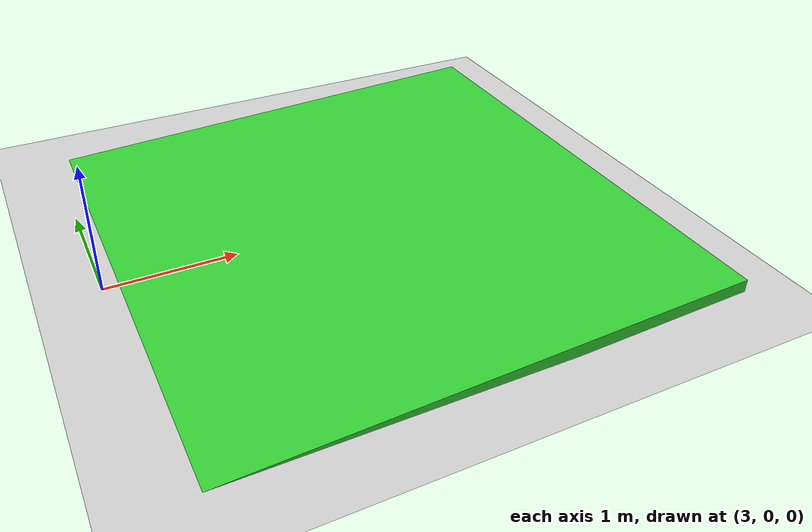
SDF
<?xml version="1.0" ?>
<sdf version="1.6">
  <world name="single_ramp_test">
    <physics name="1ms" type="ignored">
      <max_step_size>0.001</max_step_size>
      <real_time_factor>1.0</real_time_factor>
    </physics>

    <plugin
      filename="libignition-gazebo-physics-system.so"
      name="ignition::gazebo::systems::Physics">
    </plugin>
    <plugin
      filename="libignition-gazebo-user-commands-system.so"
      name="ignition::gazebo::systems::UserCommands">
    </plugin>
    <plugin
      filename="libignition-gazebo-scene-broadcaster-system.so"
      name="ignition::gazebo::systems::SceneBroadcaster">
    </plugin>

    <light type="directional" name="sun">
      <cast_shadows>true</cast_shadows>
      <pose>0 0 10 0 0 0</pose>
      <diffuse>0.8 0.8 0.8 1</diffuse>
      <specular>0.2 0.2 0.2 1</specular>
      <direction>-0.5 0.1 -0.9</direction>
    </light>

    <model name="ground_plane">
      <static>true</static>
      <link name="link">
        <collision name="collision">
          <geometry>
            <plane>
              <normal>0 0 1</normal>
              <size>100 100</size>
            </plane>
          </geometry>
          <surface>
            <friction>
              <ode>
                <mu>100</mu>
                <mu2>100</mu2>
              </ode>
            </friction>
          </surface>
        </collision>
        <visual name="visual">
          <geometry>
            <plane>
              <normal>0 0 1</normal>
              <size>100 100</size>
            </plane>
          </geometry>
          <material>
            <ambient>0.8 0.8 0.8 1</ambient>
            <diffuse>0.8 0.8 0.8 1</diffuse>
          </material>
        </visual>
      </link>
    </model>

    <model name="ramp_5_deg_wide">
      <static>true</static>
      <pose>5.01 0 0.02 0 -0.04 0</pose>
      <link name="link">
        <collision name="collision">
          <geometry>
            <box>
              <size>4 4 0.1</size>
            </box>
          </geometry>
          <surface>
            <friction>
              <ode>
                <mu>100</mu>
                <mu2>100</mu2>
              </ode>
            </friction>
          </surface>
        </collision>
        <visual name="visual">
          <geometry>
            <box>
              <size>4 4 0.1</size>
            </box>
          </geometry>
          <material>
            <ambient>0.2 0.8 0.2 1</ambient>
            <diffuse>0.2 0.8 0.2 1</diffuse>
          </material>
        </visual>
      </link>
    </model>

  </world>
</sdf>
